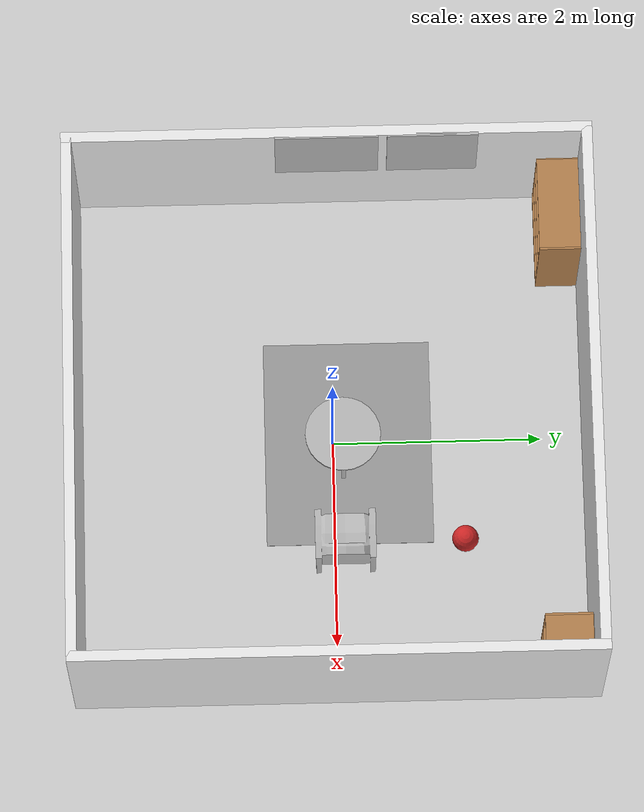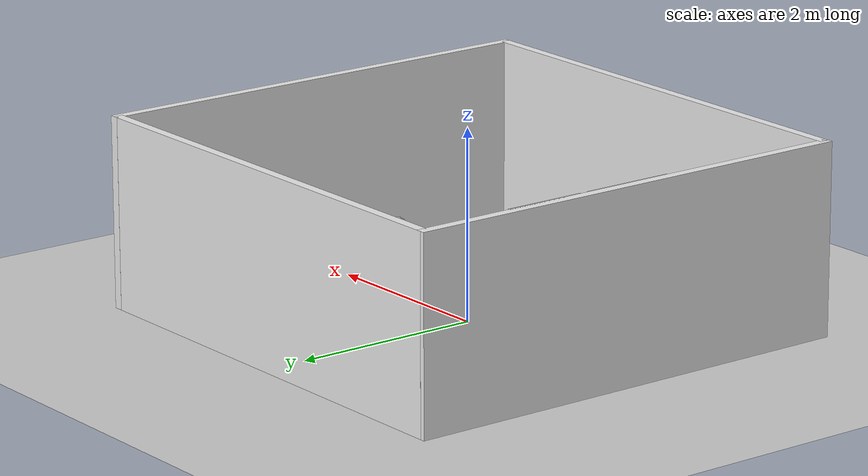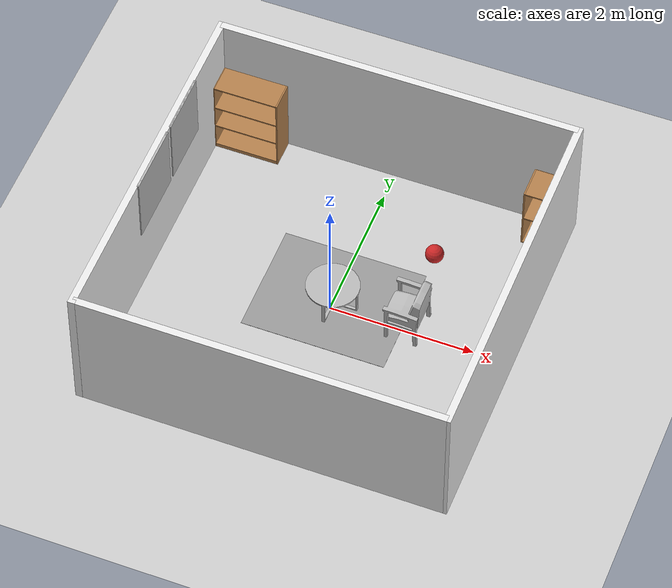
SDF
<sdf version="1.10">
 <world name="default">
  <gravity>0 0 -9.8000000000000007</gravity>
  <magnetic_field>6.0000000000000002e-06 2.3e-05 -4.1999999999999998e-05</magnetic_field>
  <atmosphere type="adiabatic"/>
  <physics type="ode">
   <max_step_size>0.001</max_step_size>
   <real_time_factor>1</real_time_factor>
   <real_time_update_rate>1000</real_time_update_rate>
  </physics>
  <scene>
   <ambient>0.400000006 0.400000006 0.400000006 1</ambient>
   <background>0.699999988 0.699999988 0.699999988 1</background>
   <shadows>true</shadows>
  </scene>
  <audio><device>default</device></audio>
  <spherical_coordinates>
   <surface_model>EARTH_WGS84</surface_model>
   <latitude_deg>0</latitude_deg>
   <longitude_deg>0</longitude_deg>
   <elevation>0</elevation>
   <heading_deg>0</heading_deg>
  </spherical_coordinates>
  <model name="ground_plane">
   <static>true</static>
   <link name="link">
    <collision name="collision">
     <geometry><plane><normal>0 0 1</normal><size>10 10</size></plane></geometry>
     <surface>
      <contact><collide_bitmask>65535</collide_bitmask></contact>
      <friction><ode><mu>100</mu><mu2>50</mu2></ode></friction>
     </surface>
    </collision>
    <visual name="visual">
     <cast_shadows>false</cast_shadows>
     <geometry><plane><normal>0 0 1</normal><size>10 10</size></plane></geometry>
     <material>
      <script><uri>file://media/materials/scripts/gazebo.material</uri><name>Gazebo/Grey</name></script>
     </material>
    </visual>
    <inertial>
     <mass>1</mass>
     <inertia><ixx>1</ixx><ixy>0</ixy><ixz>0</ixz><iyy>1</iyy><iyz>0</iyz><izz>1</izz></inertia>
    </inertial>
   </link>
  </model>
  <model name="CoffeeTable">
   <static>true</static>
   <link name="body">
    <visual name="visual">
     <geometry>
      <mesh>
       <uri>https://fuel.ignitionrobotics.org/1.0/openrobotics/models/coffeetable/1/files/meshes/CoffeeTable.obj</uri>
       <scale>0.0081700000000000002 0.0081700000000000002 0.0081700000000000002</scale>
      </mesh>
     </geometry>
    </visual>
    <collision name="collision">
     <geometry>
      <mesh>
       <uri>https://fuel.ignitionrobotics.org/1.0/openrobotics/models/coffeetable/1/files/meshes/CoffeeTable.obj</uri>
       <scale>0.0081700000000000002 0.0081700000000000002 0.0081700000000000002</scale>
      </mesh>
     </geometry>
    </collision>
    <inertial>
     <inertia><ixx>1</ixx><ixy>0</ixy><ixz>0</ixz><iyy>1</iyy><iyz>0</iyz><izz>1</izz></inertia>
     <mass>1</mass>
    </inertial>
   </link>
   <pose>0 0.10000000000000001 -0.00012899999999999999 2.0000000000000033e-06 -2.0000000000000016e-06 -2.8272774843177607e-27</pose>
  </model>
  <model name="Chair">
   <static>true</static>
   <link name="body">
    <pose>0 0 0 0 0 1.5708</pose>
    <visual name="visual">
     <geometry>
      <mesh>
       <uri>https://fuel.ignitionrobotics.org/1.0/openrobotics/models/chair/2/files/meshes/Chair.obj</uri>
       <scale>0.0081700000000000002 0.0081700000000000002 0.0081700000000000002</scale>
      </mesh>
     </geometry>
    </visual>
    <collision name="collision">
     <geometry>
      <mesh>
       <uri>https://fuel.ignitionrobotics.org/1.0/openrobotics/models/chair/2/files/meshes/Chair.obj</uri>
       <scale>0.0081700000000000002 0.0081700000000000002 0.0081700000000000002</scale>
      </mesh>
     </geometry>
    </collision>
    <inertial>
     <inertia><ixx>1</ixx><ixy>0</ixy><ixz>0</ixz><iyy>1</iyy><iyz>0</iyz><izz>1</izz></inertia>
     <mass>1</mass>
    </inertial>
   </link>
   <pose>1 0.10000000000000001 0 -4.0000000000000032e-06 1.9999999999999999e-06 3.1415000000000002</pose>
  </model>
  <model name="Bookshelf">
   <static>true</static>
   <link name="link">
    <inertial>
     <mass>1</mass>
     <inertia><ixx>1</ixx><ixy>0</ixy><ixz>0</ixz><iyy>1</iyy><iyz>0</iyz><izz>1</izz></inertia>
    </inertial>
    <collision name="back">
     <pose>0 0.0050000000000000001 0.59999999999999998 0 0 0</pose>
     <geometry><box><size>0.90000000000000002 0.01 1.2</size></box></geometry>
    </collision>
    <visual name="visual1">
     <pose>0 0.0050000000000000001 0.59999999999999998 0 0 0</pose>
     <geometry><box><size>0.90000000000000002 0.01 1.2</size></box></geometry>
     <material>
      <diffuse>1 1 1 1</diffuse>
      <script><uri>file://media/materials/scripts/gazebo.material</uri><name>Gazebo/Wood</name></script>
      <pbr>
       <metal>
        <albedo_map>https://fuel.ignitionrobotics.org/1.0/openrobotics/models/bookshelf/3/files/bookshelf_diffuse.jpg</albedo_map>
       </metal>
      </pbr>
     </material>
    </visual>
    <collision name="left_side">
     <pose>0.45000000000000001 -0.19500000000000001 0.59999999999999998 0 0 0</pose>
     <geometry><box><size>0.02 0.40000000000000002 1.2</size></box></geometry>
    </collision>
    <visual name="visual2">
     <pose>0.45000000000000001 -0.19500000000000001 0.59999999999999998 0 0 0</pose>
     <geometry><box><size>0.02 0.40000000000000002 1.2</size></box></geometry>
     <material>
      <diffuse>1 1 1 1</diffuse>
      <script><uri>file://media/materials/scripts/gazebo.material</uri><name>Gazebo/Wood</name></script>
      <pbr>
       <metal>
        <albedo_map>https://fuel.ignitionrobotics.org/1.0/openrobotics/models/bookshelf/3/files/bookshelf_diffuse.jpg</albedo_map>
       </metal>
      </pbr>
     </material>
    </visual>
    <collision name="right_side">
     <pose>-0.45000000000000001 -0.19500000000000001 0.59999999999999998 0 0 0</pose>
     <geometry><box><size>0.02 0.40000000000000002 1.2</size></box></geometry>
    </collision>
    <visual name="visual3">
     <pose>-0.45000000000000001 -0.19500000000000001 0.59999999999999998 0 0 0</pose>
     <geometry><box><size>0.02 0.40000000000000002 1.2</size></box></geometry>
     <material>
      <diffuse>1 1 1 1</diffuse>
      <script><uri>file://media/materials/scripts/gazebo.material</uri><name>Gazebo/Wood</name></script>
      <pbr>
       <metal>
        <albedo_map>https://fuel.ignitionrobotics.org/1.0/openrobotics/models/bookshelf/3/files/bookshelf_diffuse.jpg</albedo_map>
       </metal>
      </pbr>
     </material>
    </visual>
    <collision name="bottom">
     <pose>0 -0.19500000000000001 0.029999999999999999 0 0 0</pose>
     <geometry><box><size>0.88 0.40000000000000002 0.059999999999999998</size></box></geometry>
    </collision>
    <visual name="visual4">
     <pose>0 -0.19500000000000001 0.029999999999999999 0 0 0</pose>
     <geometry><box><size>0.88 0.40000000000000002 0.059999999999999998</size></box></geometry>
     <material>
      <diffuse>1 1 1 1</diffuse>
      <script><uri>file://media/materials/scripts/gazebo.material</uri><name>Gazebo/Wood</name></script>
      <pbr>
       <metal>
        <albedo_map>https://fuel.ignitionrobotics.org/1.0/openrobotics/models/bookshelf/3/files/bookshelf_diffuse.jpg</albedo_map>
       </metal>
      </pbr>
     </material>
    </visual>
    <collision name="top">
     <pose>0 -0.19500000000000001 1.1899999999999999 0 0 0</pose>
     <geometry><box><size>0.88 0.40000000000000002 0.02</size></box></geometry>
    </collision>
    <visual name="visual5">
     <pose>0 -0.19500000000000001 1.1899999999999999 0 0 0</pose>
     <geometry><box><size>0.88 0.40000000000000002 0.02</size></box></geometry>
     <material>
      <diffuse>1 1 1 1</diffuse>
      <script><uri>file://media/materials/scripts/gazebo.material</uri><name>Gazebo/Wood</name></script>
      <pbr>
       <metal>
        <albedo_map>https://fuel.ignitionrobotics.org/1.0/openrobotics/models/bookshelf/3/files/bookshelf_diffuse.jpg</albedo_map>
       </metal>
      </pbr>
     </material>
    </visual>
    <collision name="low_shelf">
     <pose>0 -0.19500000000000001 0.42999999999999999 0 0 0</pose>
     <geometry><box><size>0.88 0.40000000000000002 0.02</size></box></geometry>
    </collision>
    <visual name="visual6">
     <pose>0 -0.19500000000000001 0.42999999999999999 0 0 0</pose>
     <geometry><box><size>0.88 0.40000000000000002 0.02</size></box></geometry>
     <material>
      <diffuse>1 1 1 1</diffuse>
      <script><uri>file://media/materials/scripts/gazebo.material</uri><name>Gazebo/Wood</name></script>
      <pbr>
       <metal>
        <albedo_map>https://fuel.ignitionrobotics.org/1.0/openrobotics/models/bookshelf/3/files/bookshelf_diffuse.jpg</albedo_map>
       </metal>
      </pbr>
     </material>
    </visual>
    <collision name="high_shelf">
     <pose>0 -0.19500000000000001 0.80000000000000004 0 0 0</pose>
     <geometry><box><size>0.88 0.40000000000000002 0.02</size></box></geometry>
    </collision>
    <visual name="visual7">
     <pose>0 -0.19500000000000001 0.80000000000000004 0 0 0</pose>
     <geometry><box><size>0.88 0.40000000000000002 0.02</size></box></geometry>
     <material>
      <diffuse>1 1 1 1</diffuse>
      <script><uri>file://media/materials/scripts/gazebo.material</uri><name>Gazebo/Wood</name></script>
      <pbr>
       <metal>
        <albedo_map>https://fuel.ignitionrobotics.org/1.0/openrobotics/models/bookshelf/3/files/bookshelf_diffuse.jpg</albedo_map>
       </metal>
      </pbr>
     </material>
    </visual>
   </link>
   <pose>-2 2.3999999999999999 0 0 0 0</pose>
  </model>
  <model name="cabinet">
   <static>true</static>
   <link name="cabinet_bottom_plate">
    <inertial>
     <pose>0 0 -1 0 0 0</pose>
     <inertia>
      <ixx>2.0499999999999998</ixx>
      <ixy>0</ixy>
      <ixz>0</ixz>
      <iyy>2.0499999999999998</iyy>
      <iyz>0</iyz>
      <izz>2.0499999999999998</izz>
     </inertia>
     <mass>25</mass>
    </inertial>
    <collision name="cabinet_bottom_plate_geom">
     <pose>0 0 0.01 0 0 0</pose>
     <geometry><box><size>0.45000000000000001 0.45000000000000001 0.02</size></box></geometry>
    </collision>
    <visual name="cabinet_bottom_plate_geom_visual">
     <pose>0 0 0.01 0 0 0</pose>
     <geometry><box><size>0.45000000000000001 0.45000000000000001 0.02</size></box></geometry>
     <material>
      <script><uri>file://media/materials/scripts/gazebo.material</uri><name>Gazebo/Wood</name></script>
     </material>
    </visual>
    <collision name="cabinet_bottom_plate_geom_cabinet_back_plate">
     <pose>0.23499999999999999 0 0.51000000000000001 0 0 0</pose>
     <geometry><box><size>0.02 0.45000000000000001 1.02</size></box></geometry>
    </collision>
    <visual name="cabinet_bottom_plate_geom_cabinet_back_plate_visual">
     <pose>0.23499999999999999 0 0.51000000000000001 0 0 0</pose>
     <geometry><box><size>0.02 0.45000000000000001 1.02</size></box></geometry>
     <material>
      <script><uri>file://media/materials/scripts/gazebo.material</uri><name>Gazebo/Wood</name></script>
     </material>
    </visual>
    <collision name="cabinet_bottom_plate_geom_cabinet_left_plate">
     <pose>0 0.23499999999999999 0.51000000000000001 0 0 0</pose>
     <geometry><box><size>0.45000000000000001 0.02 1.02</size></box></geometry>
    </collision>
    <visual name="cabinet_bottom_plate_geom_cabinet_left_plate_visual">
     <pose>0 0.23499999999999999 0.51000000000000001 0 0 0</pose>
     <geometry><box><size>0.45000000000000001 0.02 1.02</size></box></geometry>
     <material>
      <script><uri>file://media/materials/scripts/gazebo.material</uri><name>Gazebo/Wood</name></script>
     </material>
    </visual>
    <collision name="cabinet_bottom_plate_geom_cabinet_middle_plate">
     <pose>0 0 0.51000000000000001 0 0 0</pose>
     <geometry><box><size>0.45000000000000001 0.45000000000000001 0.02</size></box></geometry>
    </collision>
    <visual name="cabinet_bottom_plate_geom_cabinet_middle_plate_visual">
     <pose>0 0 0.51000000000000001 0 0 0</pose>
     <geometry><box><size>0.45000000000000001 0.45000000000000001 0.02</size></box></geometry>
     <material>
      <script><uri>file://media/materials/scripts/gazebo.material</uri><name>Gazebo/Wood</name></script>
     </material>
    </visual>
    <collision name="cabinet_bottom_plate_geom_cabinet_right_plate">
     <pose>0 -0.23499999999999999 0.51000000000000001 0 0 0</pose>
     <geometry><box><size>0.45000000000000001 0.02 1.02</size></box></geometry>
    </collision>
    <visual name="cabinet_bottom_plate_geom_cabinet_right_plate_visual">
     <pose>0 -0.23499999999999999 0.51000000000000001 0 0 0</pose>
     <geometry><box><size>0.45000000000000001 0.02 1.02</size></box></geometry>
     <material>
      <script><uri>file://media/materials/scripts/gazebo.material</uri><name>Gazebo/Wood</name></script>
     </material>
    </visual>
    <collision name="cabinet_bottom_plate_geom_cabinet_top_plate">
     <pose>0 0 1.01 0 0 0</pose>
     <geometry><box><size>0.45000000000000001 0.45000000000000001 0.02</size></box></geometry>
    </collision>
    <visual name="cabinet_bottom_plate_geom_cabinet_top_plate_visual">
     <pose>0 0 1.01 0 0 0</pose>
     <geometry><box><size>0.45000000000000001 0.45000000000000001 0.02</size></box></geometry>
     <material>
      <script><uri>file://media/materials/scripts/gazebo.material</uri><name>Gazebo/Wood</name></script>
     </material>
    </visual>
   </link>
   <pose>2.21 2.1699999999999999 0 0 0 1.5707</pose>
  </model>
  <model name="makerspet_poster">
   <link name="link">
    <visual name="visual">
     <geometry><box><size>0.029999999999999999 0.85714000000000001 1</size></box></geometry>
     <material>
      <script>
       <uri>https://fuel.ignitionrobotics.org/1.0/makerspet/models/makerspet_poster/1/files/material/script</uri>
       <uri>https://fuel.ignitionrobotics.org/1.0/makerspet/models/makerspet_poster/1/files/material/textures</uri>
       <name>Custom/makerspet</name>
      </script>
     </material>
    </visual>
    <inertial>
     <mass>1</mass>
     <inertia><ixx>1</ixx><ixy>0</ixy><ixz>0</ixz><iyy>1</iyy><iyz>0</iyz><izz>1</izz></inertia>
    </inertial>
   </link>
   <static>true</static>
   <pose>-2.4500000000000002 1 1.5 0 0 0</pose>
  </model>
  <model name="kaiaai_poster">
   <link name="link">
    <visual name="visual">
     <geometry><box><size>0.029999999999999999 0.97819999999999996 1</size></box></geometry>
     <material>
      <script>
       <uri>https://fuel.ignitionrobotics.org/1.0/makerspet/models/kaiaai_poster/1/files/material/script</uri>
       <uri>https://fuel.ignitionrobotics.org/1.0/makerspet/models/kaiaai_poster/1/files/material/textures</uri>
       <name>Custom/kaiaai</name>
      </script>
     </material>
    </visual>
    <inertial>
     <mass>1</mass>
     <inertia><ixx>1</ixx><ixy>0</ixy><ixz>0</ixz><iyy>1</iyy><iyz>0</iyz><izz>1</izz></inertia>
    </inertial>
   </link>
   <static>true</static>
   <pose>-2.4500000000000002 0 1.5 0 0 0</pose>
  </model>
  <model name="room_wall_2x5">
   <link name="link">
    <visual name="visual">
     <geometry><box><size>0.10000000000000001 5 2</size></box></geometry>
     <material>
      <script><uri>file://media/materials/scripts/gazebo.material</uri><name>Gazebo/White</name></script>
     </material>
    </visual>
    <collision name="collision"><geometry><box><size>0.10000000000000001 5 2</size></box></geometry></collision>
    <inertial>
     <mass>1</mass>
     <inertia><ixx>1</ixx><ixy>0</ixy><ixz>0</ixz><iyy>1</iyy><iyz>0</iyz><izz>1</izz></inertia>
    </inertial>
   </link>
   <static>true</static>
   <pose>-2.5 0 1 0 0 0</pose>
  </model>
  <model name="room_wall_2x5_0">
   <link name="link">
    <visual name="visual">
     <geometry><box><size>0.10000000000000001 5 2</size></box></geometry>
     <material>
      <script><uri>file://media/materials/scripts/gazebo.material</uri><name>Gazebo/White</name></script>
     </material>
    </visual>
    <collision name="collision"><geometry><box><size>0.10000000000000001 5 2</size></box></geometry></collision>
    <inertial>
     <mass>1</mass>
     <inertia><ixx>1</ixx><ixy>0</ixy><ixz>0</ixz><iyy>1</iyy><iyz>0</iyz><izz>1</izz></inertia>
    </inertial>
   </link>
   <static>true</static>
   <pose>2.5 0 1 0 0 0</pose>
  </model>
  <model name="room_wall_2x5_1">
   <link name="link">
    <visual name="visual">
     <geometry><box><size>0.10000000000000001 5 2</size></box></geometry>
     <material>
      <script><uri>file://media/materials/scripts/gazebo.material</uri><name>Gazebo/White</name></script>
     </material>
    </visual>
    <collision name="collision"><geometry><box><size>0.10000000000000001 5 2</size></box></geometry></collision>
    <inertial>
     <mass>1</mass>
     <inertia><ixx>1</ixx><ixy>0</ixy><ixz>0</ixz><iyy>1</iyy><iyz>0</iyz><izz>1</izz></inertia>
    </inertial>
   </link>
   <static>true</static>
   <pose>0 -2.4500000000000002 1 0 0 1.5707</pose>
  </model>
  <model name="room_wall_2x5_2">
   <link name="link">
    <visual name="visual">
     <geometry><box><size>0.10000000000000001 5 2</size></box></geometry>
     <material>
      <script><uri>file://media/materials/scripts/gazebo.material</uri><name>Gazebo/White</name></script>
     </material>
    </visual>
    <collision name="collision"><geometry><box><size>0.10000000000000001 5 2</size></box></geometry></collision>
    <inertial>
     <mass>1</mass>
     <inertia><ixx>1</ixx><ixy>0</ixy><ixz>0</ixz><iyy>1</iyy><iyz>0</iyz><izz>1</izz></inertia>
    </inertial>
   </link>
   <static>true</static>
   <pose>0 2.4500000000000002 1 0 0 1.5707</pose>
  </model>
  <model name="rug_ivory_2m_0">
   <link name="link">
    <visual name="visual">
     <geometry><box><size>1.6000000000000001 2 0.0050000000000000001</size></box></geometry>
     <material>
      <script><uri>file://media/materials/scripts/gazebo.material</uri><name>Gazebo/Gray</name></script>
     </material>
    </visual>
    <inertial>
     <mass>1</mass>
     <inertia><ixx>1</ixx><ixy>0</ixy><ixz>0</ixz><iyy>1</iyy><iyz>0</iyz><izz>1</izz></inertia>
    </inertial>
   </link>
   <static>true</static>
   <pose>0 0.14999999999999999 0 0 0 1.5707</pose>
  </model>
  <model name="red_ball_10in">
   <pose>1 1.25 0.127 0 0 0</pose>
   <link name="link">
    <inertial>
     <mass>0.21299999999999999</mass>
     <inertia>
      <ixx>0.0032266700000000001</ixx>
      <ixy>0</ixy>
      <ixz>0</ixz>
      <iyy>0.0032266700000000001</iyy>
      <iyz>0</iyz>
      <izz>0.0032266700000000001</izz>
     </inertia>
    </inertial>
    <visual name="visual">
     <geometry><sphere><radius>0.127</radius></sphere></geometry>
     <material>
      <script><uri>file://media/materials/scripts/gazebo.material</uri><name>Gazebo/Red</name></script>
     </material>
    </visual>
    <collision name="collision">
     <geometry><sphere><radius>0.127</radius></sphere></geometry>
     <surface>
      <bounce>
       <restitution_coefficient>0.15937000000000001</restitution_coefficient>
       <threshold>0</threshold>
      </bounce>
      <contact><ode><max_vel>100</max_vel><min_depth>0.001</min_depth></ode></contact>
     </surface>
    </collision>
   </link>
   <static>false</static>
  </model>
  <light name="sun" type="directional">
   <pose>0 0 10 0 0 0</pose>
   <intensity>1</intensity>
   <direction>-0.5 0.10000000000000001 -0.90000000000000002</direction>
   <diffuse>0.800000012 0.800000012 0.800000012 1</diffuse>
   <specular>0.200000003 0.200000003 0.200000003 1</specular>
   <attenuation>
    <range>1000</range>
    <linear>0.01</linear>
    <constant>0.90000000000000002</constant>
    <quadratic>0.001</quadratic>
   </attenuation>
   <spot><inner_angle>0</inner_angle><outer_angle>0</outer_angle><falloff>0</falloff></spot>
  </light>
  <light name="pointlight" type="point">
   <pose>0.35389590697512352 0.16178236750752895 2 0 0 0</pose>
   <cast_shadows>false</cast_shadows>
   <intensity>1</intensity>
   <direction>0 0 -1</direction>
   <diffuse>0.5 0.5 0.5 1</diffuse>
   <specular>0.5 0.5 0.5 1</specular>
   <attenuation>
    <range>4</range>
    <linear>0.5</linear>
    <constant>0.20000000000000001</constant>
    <quadratic>0.01</quadratic>
   </attenuation>
   <spot><inner_angle>0</inner_angle><outer_angle>0</outer_angle><falloff>0</falloff></spot>
  </light>
 </world>
</sdf>
